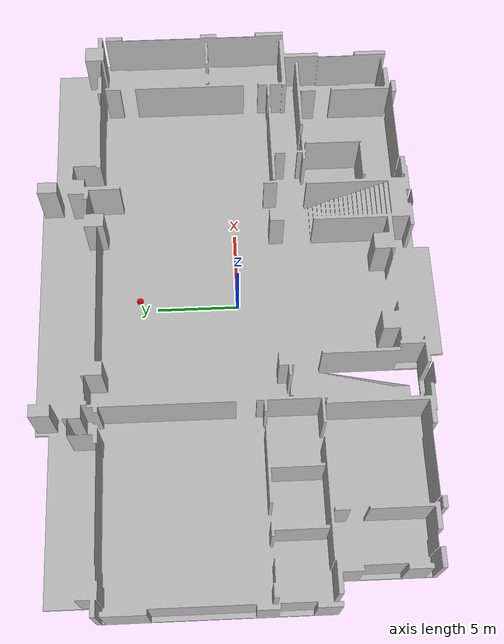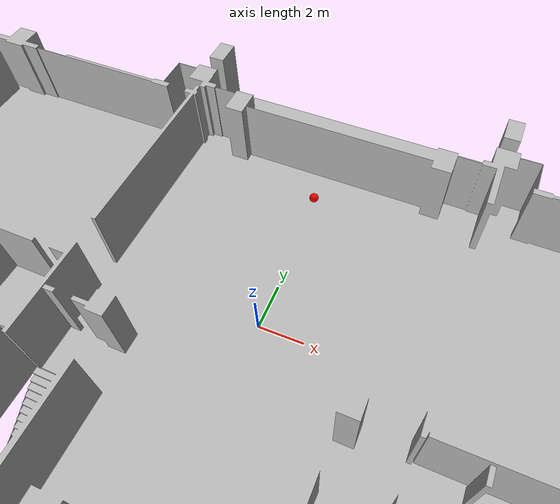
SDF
<?xml version="1.0" ?>
<sdf version="1.9">
  <world name="villa_glass_test">

    <!-- 重力朝 +Y，讓球水平撞玻璃 -->
    <gravity>0 9.81 0</gravity>

    <physics name="glass_test_physics" type="ignored">
      <max_step_size>0.0005</max_step_size>
      <real_time_factor>1.0</real_time_factor>
    </physics>

    <plugin filename="gz-sim-physics-system"
            name="gz::sim::systems::Physics"/>

    <plugin filename="gz-sim-user-commands-system"
            name="gz::sim::systems::UserCommands"/>

    <plugin filename="gz-sim-scene-broadcaster-system"
            name="gz::sim::systems::SceneBroadcaster"/>

    <light type="directional" name="sun">
      <pose>0 0 20 0 0 0</pose>
      <diffuse>0.8 0.8 0.8 1</diffuse>
      <direction>-0.5 0.1 -0.9</direction>
    </light>

    <include>
      <uri>model://villa_1F</uri>
    </include>

    <!--
      Target:
      1F_Glass_008_GreatRoom_North
      x = 0
      y ≈ 8.55
      z center = 1.6
      thickness ≈ 0.02 m
    -->
    <model name="glass_test_ball">
      <pose>0 6.0 1.5 0 0 0</pose>

      <link name="ball_link">

        <inertial>
          <mass>1.0</mass>
          <inertia>
            <ixx>0.004</ixx>
            <iyy>0.004</iyy>
            <izz>0.004</izz>
          </inertia>
        </inertial>

        <collision name="ball_collision">
          <geometry>
            <sphere>
              <radius>0.2</radius>
            </sphere>
          </geometry>
        </collision>

        <visual name="ball_visual">
          <geometry>
            <sphere>
              <radius>0.2</radius>
            </sphere>
          </geometry>
          <material>
            <ambient>1 0 0 1</ambient>
            <diffuse>1 0 0 1</diffuse>
          </material>
        </visual>

      </link>
    </model>

  </world>
</sdf>

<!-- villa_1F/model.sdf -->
<sdf version="1.9">

  <model name="villa_1F">

    <static>true</static>

    <link name="villa_1F_link">

      <visual name="villa_1F_visual">
        <geometry>
          <mesh>
            <uri>meshes/villa_1F.obj</uri>
          </mesh>
        </geometry>
      </visual>

      <collision name="villa_1F_collision">
        <geometry>
          <mesh>
            <uri>meshes/villa_1F.obj</uri>
          </mesh>
        </geometry>
      </collision>

    </link>

  </model>

</sdf>
